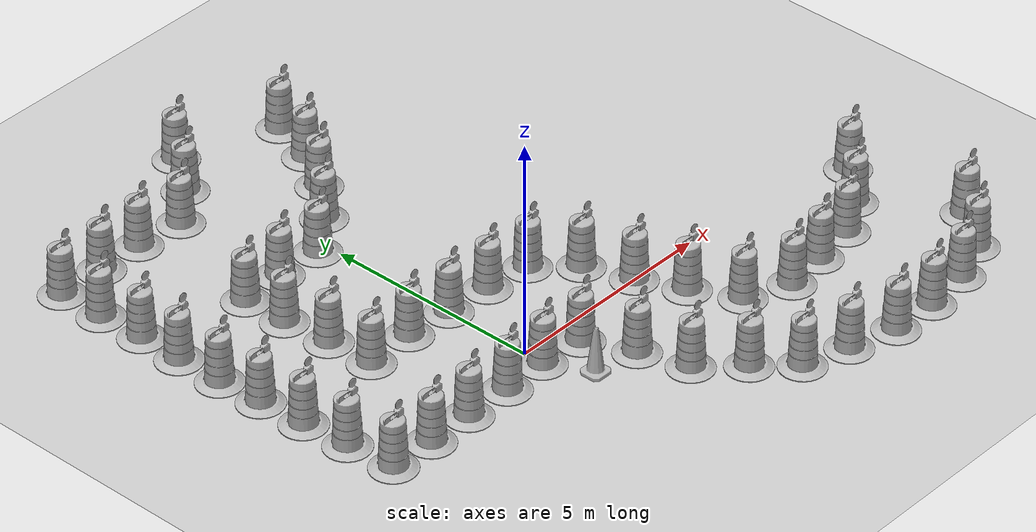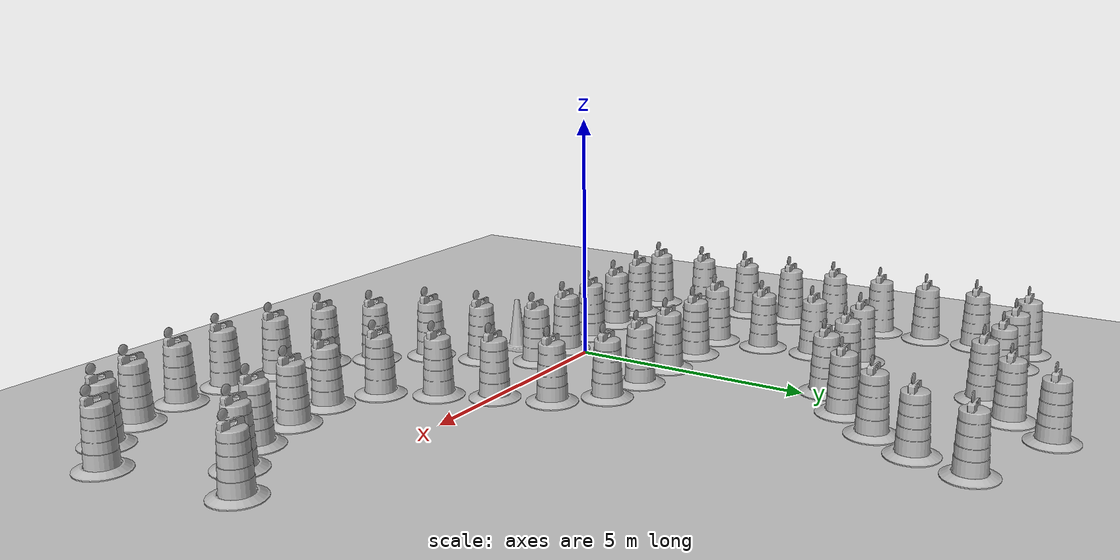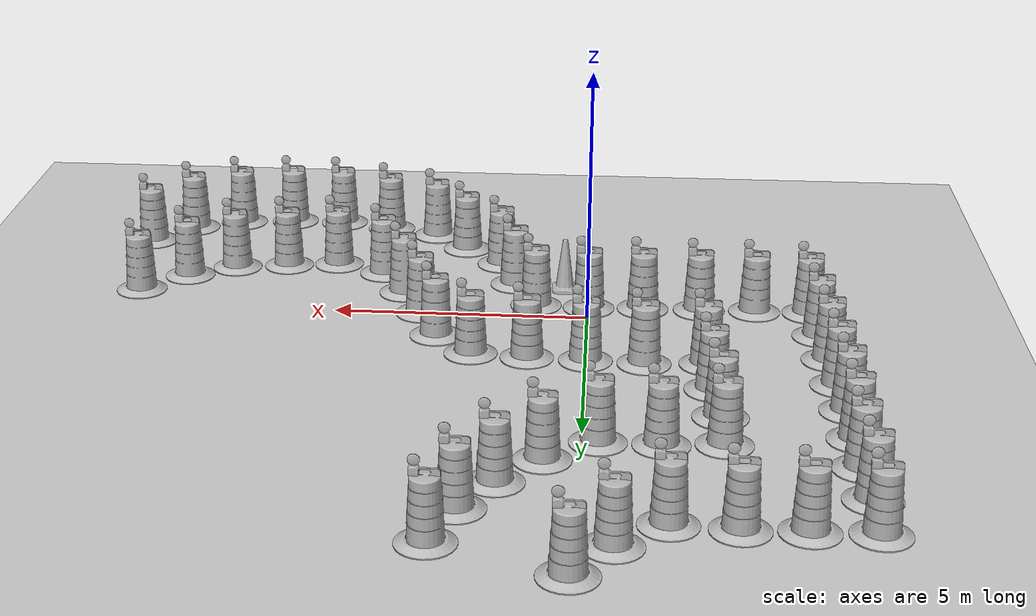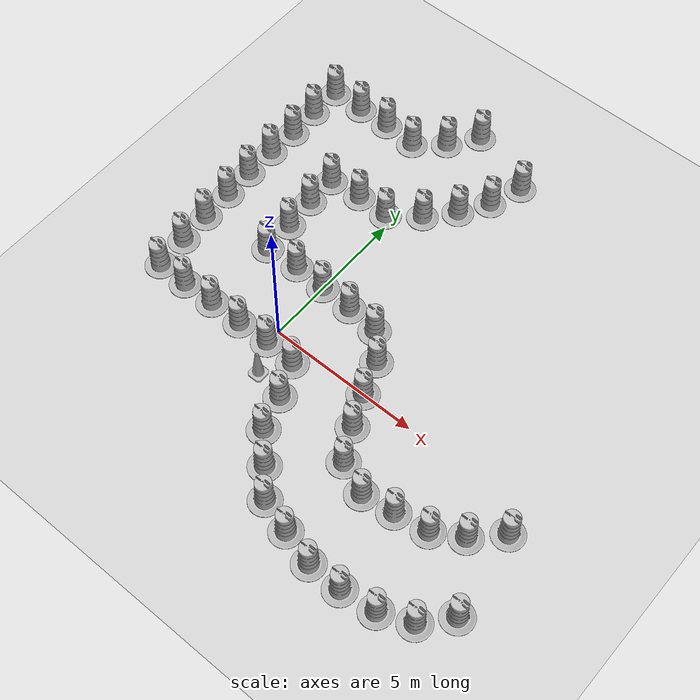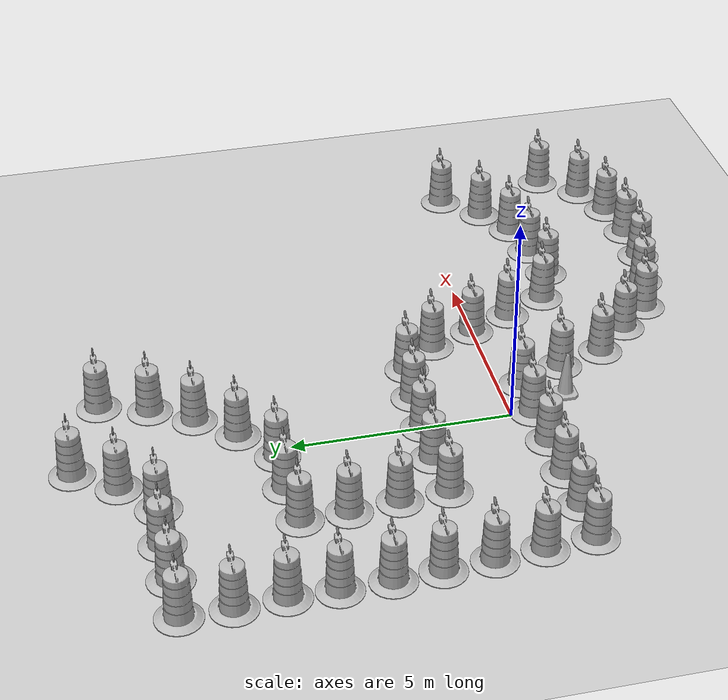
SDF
<sdf version="1.7">
 <world name="default">
  <light name="sun" type="directional">
   <pose>0 0 10 0 -0 0</pose>
   <diffuse>0.8 0.8 0.8 1</diffuse>
   <specular>0.2 0.2 0.2 1</specular>
   <attenuation>
    <range>1000</range>
    <constant>0.9</constant>
    <linear>0.01</linear>
    <quadratic>0.001</quadratic>
   </attenuation>
   <direction>-0.5 0.1 -0.9</direction>
   <spot><inner_angle>0</inner_angle><outer_angle>0</outer_angle><falloff>0</falloff></spot>
  </light>
  <model name="ground_plane">
   <static>1</static>
   <link name="link">
    <collision name="collision">
     <geometry><plane><normal>0 0 1</normal><size>100 100</size></plane></geometry>
     <surface>
      <contact><collide_bitmask>65535</collide_bitmask></contact>
      <friction><ode><mu>100</mu><mu2>50</mu2></ode></friction>
     </surface>
    </collision>
    <visual name="visual">
     <cast_shadows>0</cast_shadows>
     <geometry><plane><normal>0 0 1</normal><size>100 100</size></plane></geometry>
     <material>
      <script><uri>file://media/materials/scripts/gazebo.material</uri><name>Gazebo/Grey</name></script>
     </material>
    </visual>
   </link>
  </model>
  <gravity>0 0 -9.8</gravity>
  <magnetic_field>6e-06 2.3e-05 -4.2e-05</magnetic_field>
  <atmosphere type="adiabatic"/>
  <physics type="ode">
   <max_step_size>0.001</max_step_size>
   <real_time_factor>1</real_time_factor>
   <real_time_update_rate>1000</real_time_update_rate>
  </physics>
  <scene><ambient>0.4 0.4 0.4 1</ambient><background>0.7 0.7 0.7 1</background><shadows>1</shadows></scene>
  <audio><device>default</device></audio>
  <spherical_coordinates>
   <surface_model>EARTH_WGS84</surface_model>
   <latitude_deg>0</latitude_deg>
   <longitude_deg>0</longitude_deg>
   <elevation>0</elevation>
   <heading_deg>0</heading_deg>
  </spherical_coordinates>
  <model name="Construction Barrel">
   <link name="link">
    <inertial>
     <pose>0 0 0.4 0 -0 0</pose>
     <mass>500</mass>
     <inertia><ixx>51.2096</ixx><iyy>51.2096</iyy><izz>25</izz><ixy>0</ixy><ixz>0</ixz><iyz>0</iyz></inertia>
    </inertial>
    <collision name="collision">
     <geometry><mesh><uri>model://construction_barrel/meshes/construction_barrel.dae</uri></mesh></geometry>
    </collision>
    <visual name="visual">
     <geometry><mesh><uri>model://construction_barrel/meshes/construction_barrel.dae</uri></mesh></geometry>
    </visual>
   </link>
   <pose>1.10001 1.9769 -3e-06 -6e-06 -5e-06 -5.8e-05</pose>
  </model>
  <model name="Construction Barrel_0">
   <link name="link">
    <inertial>
     <pose>0 0 0.4 0 -0 0</pose>
     <mass>500</mass>
     <inertia><ixx>51.2096</ixx><iyy>51.2096</iyy><izz>25</izz><ixy>0</ixy><ixz>0</ixz><iyz>0</iyz></inertia>
    </inertial>
    <collision name="collision">
     <geometry><mesh><uri>model://construction_barrel/meshes/construction_barrel.dae</uri></mesh></geometry>
    </collision>
    <visual name="visual">
     <geometry><mesh><uri>model://construction_barrel/meshes/construction_barrel.dae</uri></mesh></geometry>
    </visual>
   </link>
   <pose>2.16804 1.86412 -3e-06 -6e-06 -5e-06 -5.7e-05</pose>
  </model>
  <model name="Construction Barrel_1">
   <link name="link">
    <inertial>
     <pose>0 0 0.4 0 -0 0</pose>
     <mass>500</mass>
     <inertia><ixx>51.2096</ixx><iyy>51.2096</iyy><izz>25</izz><ixy>0</ixy><ixz>0</ixz><iyz>0</iyz></inertia>
    </inertial>
    <collision name="collision">
     <geometry><mesh><uri>model://construction_barrel/meshes/construction_barrel.dae</uri></mesh></geometry>
    </collision>
    <visual name="visual">
     <geometry><mesh><uri>model://construction_barrel/meshes/construction_barrel.dae</uri></mesh></geometry>
    </visual>
   </link>
   <pose>2.89752 1.07385 -3e-06 -6e-06 -5e-06 -5.6e-05</pose>
  </model>
  <model name="Construction Barrel_2">
   <link name="link">
    <inertial>
     <pose>0 0 0.4 0 -0 0</pose>
     <mass>500</mass>
     <inertia><ixx>51.2096</ixx><iyy>51.2096</iyy><izz>25</izz><ixy>0</ixy><ixz>0</ixz><iyz>0</iyz></inertia>
    </inertial>
    <collision name="collision">
     <geometry><mesh><uri>model://construction_barrel/meshes/construction_barrel.dae</uri></mesh></geometry>
    </collision>
    <visual name="visual">
     <geometry><mesh><uri>model://construction_barrel/meshes/construction_barrel.dae</uri></mesh></geometry>
    </visual>
   </link>
   <pose>3.28249 -0.000122 -4e-06 -5e-06 -7e-06 -2.6e-05</pose>
  </model>
  <model name="Construction Barrel_3">
   <link name="link">
    <inertial>
     <pose>0 0 0.4 0 -0 0</pose>
     <mass>500</mass>
     <inertia><ixx>51.2096</ixx><iyy>51.2096</iyy><izz>25</izz><ixy>0</ixy><ixz>0</ixz><iyz>0</iyz></inertia>
    </inertial>
    <collision name="collision">
     <geometry><mesh><uri>model://construction_barrel/meshes/construction_barrel.dae</uri></mesh></geometry>
    </collision>
    <visual name="visual">
     <geometry><mesh><uri>model://construction_barrel/meshes/construction_barrel.dae</uri></mesh></geometry>
    </visual>
   </link>
   <pose>3.72829 -1.01328 -1e-06 3e-06 -0 -3.9e-05</pose>
  </model>
  <model name="Construction Barrel_4">
   <link name="link">
    <inertial>
     <pose>0 0 0.4 0 -0 0</pose>
     <mass>500</mass>
     <inertia><ixx>51.2096</ixx><iyy>51.2096</iyy><izz>25</izz><ixy>0</ixy><ixz>0</ixz><iyz>0</iyz></inertia>
    </inertial>
    <collision name="collision">
     <geometry><mesh><uri>model://construction_barrel/meshes/construction_barrel.dae</uri></mesh></geometry>
    </collision>
    <visual name="visual">
     <geometry><mesh><uri>model://construction_barrel/meshes/construction_barrel.dae</uri></mesh></geometry>
    </visual>
   </link>
   <pose>4.25516 -2.02644 1e-06 3e-06 2e-06 -4.8e-05</pose>
  </model>
  <model name="Construction Barrel_5">
   <link name="link">
    <inertial>
     <pose>0 0 0.4 0 -0 0</pose>
     <mass>500</mass>
     <inertia><ixx>51.2096</ixx><iyy>51.2096</iyy><izz>25</izz><ixy>0</ixy><ixz>0</ixz><iyz>0</iyz></inertia>
    </inertial>
    <collision name="collision">
     <geometry><mesh><uri>model://construction_barrel/meshes/construction_barrel.dae</uri></mesh></geometry>
    </collision>
    <visual name="visual">
     <geometry><mesh><uri>model://construction_barrel/meshes/construction_barrel.dae</uri></mesh></geometry>
    </visual>
   </link>
   <pose>-0.000135 2.02625 -1e-06 -8e-06 -2e-06 -6e-05</pose>
  </model>
  <model name="Construction Barrel_6">
   <link name="link">
    <inertial>
     <pose>0 0 0.4 0 -0 0</pose>
     <mass>500</mass>
     <inertia><ixx>51.2096</ixx><iyy>51.2096</iyy><izz>25</izz><ixy>0</ixy><ixz>0</ixz><iyz>0</iyz></inertia>
    </inertial>
    <collision name="collision">
     <geometry><mesh><uri>model://construction_barrel/meshes/construction_barrel.dae</uri></mesh></geometry>
    </collision>
    <visual name="visual">
     <geometry><mesh><uri>model://construction_barrel/meshes/construction_barrel.dae</uri></mesh></geometry>
    </visual>
   </link>
   <pose>-1.09443 2.08702 -4e-06 -5e-06 -7e-06 -2.7e-05</pose>
  </model>
  <model name="Construction Barrel_7">
   <link name="link">
    <inertial>
     <pose>0 0 0.4 0 -0 0</pose>
     <mass>500</mass>
     <inertia><ixx>51.2096</ixx><iyy>51.2096</iyy><izz>25</izz><ixy>0</ixy><ixz>0</ixz><iyz>0</iyz></inertia>
    </inertial>
    <collision name="collision">
     <geometry><mesh><uri>model://construction_barrel/meshes/construction_barrel.dae</uri></mesh></geometry>
    </collision>
    <visual name="visual">
     <geometry><mesh><uri>model://construction_barrel/meshes/construction_barrel.dae</uri></mesh></geometry>
    </visual>
   </link>
   <pose>-2.2494 2.02624 1e-06 3e-06 2e-06 -4.7e-05</pose>
  </model>
  <model name="Construction Barrel_8">
   <link name="link">
    <inertial>
     <pose>0 0 0.4 0 -0 0</pose>
     <mass>500</mass>
     <inertia><ixx>51.2096</ixx><iyy>51.2096</iyy><izz>25</izz><ixy>0</ixy><ixz>0</ixz><iyz>0</iyz></inertia>
    </inertial>
    <collision name="collision">
     <geometry><mesh><uri>model://construction_barrel/meshes/construction_barrel.dae</uri></mesh></geometry>
    </collision>
    <visual name="visual">
     <geometry><mesh><uri>model://construction_barrel/meshes/construction_barrel.dae</uri></mesh></geometry>
    </visual>
   </link>
   <pose>-2.3102 3.12045 1e-06 3e-06 2e-06 -2.6e-05</pose>
  </model>
  <model name="Construction Barrel_9">
   <link name="link">
    <inertial>
     <pose>0 0 0.4 0 -0 0</pose>
     <mass>500</mass>
     <inertia><ixx>51.2096</ixx><iyy>51.2096</iyy><izz>25</izz><ixy>0</ixy><ixz>0</ixz><iyz>0</iyz></inertia>
    </inertial>
    <collision name="collision">
     <geometry><mesh><uri>model://construction_barrel/meshes/construction_barrel.dae</uri></mesh></geometry>
    </collision>
    <visual name="visual">
     <geometry><mesh><uri>model://construction_barrel/meshes/construction_barrel.dae</uri></mesh></geometry>
    </visual>
   </link>
   <pose>-2.41151 4.23495 -1e-06 4e-06 -2e-06 -4.3e-05</pose>
  </model>
  <model name="Construction Barrel_4_clone">
   <link name="link">
    <inertial>
     <pose>0 0 0.4 0 -0 0</pose>
     <mass>500</mass>
     <inertia><ixx>51.2096</ixx><iyy>51.2096</iyy><izz>25</izz><ixy>0</ixy><ixz>0</ixz><iyz>0</iyz></inertia>
    </inertial>
    <collision name="collision">
     <geometry><mesh><uri>model://construction_barrel/meshes/construction_barrel.dae</uri></mesh></geometry>
    </collision>
    <visual name="visual">
     <geometry><mesh><uri>model://construction_barrel/meshes/construction_barrel.dae</uri></mesh></geometry>
    </visual>
   </link>
   <pose>-1.09436 -0.526948 -1e-06 3e-06 -0 -4e-05</pose>
  </model>
  <model name="Construction Barrel_4_clone_0">
   <link name="link">
    <inertial>
     <pose>0 0 0.4 0 -0 0</pose>
     <mass>500</mass>
     <inertia><ixx>51.2096</ixx><iyy>51.2096</iyy><izz>25</izz><ixy>0</ixy><ixz>0</ixz><iyz>0</iyz></inertia>
    </inertial>
    <collision name="collision">
     <geometry><mesh><uri>model://construction_barrel/meshes/construction_barrel.dae</uri></mesh></geometry>
    </collision>
    <visual name="visual">
     <geometry><mesh><uri>model://construction_barrel/meshes/construction_barrel.dae</uri></mesh></geometry>
    </visual>
   </link>
   <pose>-0.020383 -0.486409 -3e-06 -6e-06 -5e-06 -5.5e-05</pose>
  </model>
  <model name="Construction Barrel_4_clone_1">
   <link name="link">
    <inertial>
     <pose>0 0 0.4 0 -0 0</pose>
     <mass>500</mass>
     <inertia><ixx>51.2096</ixx><iyy>51.2096</iyy><izz>25</izz><ixy>0</ixy><ixz>0</ixz><iyz>0</iyz></inertia>
    </inertial>
    <collision name="collision">
     <geometry><mesh><uri>model://construction_barrel/meshes/construction_barrel.dae</uri></mesh></geometry>
    </collision>
    <visual name="visual">
     <geometry><mesh><uri>model://construction_barrel/meshes/construction_barrel.dae</uri></mesh></geometry>
    </visual>
   </link>
   <pose>1.03338 -0.547186 -1e-06 -8e-06 -2e-06 -6e-05</pose>
  </model>
  <model name="Construction Barrel_4_clone_2">
   <link name="link">
    <inertial>
     <pose>0 0 0.4 0 -0 0</pose>
     <mass>500</mass>
     <inertia><ixx>51.2096</ixx><iyy>51.2096</iyy><izz>25</izz><ixy>0</ixy><ixz>0</ixz><iyz>0</iyz></inertia>
    </inertial>
    <collision name="collision">
     <geometry><mesh><uri>model://construction_barrel/meshes/construction_barrel.dae</uri></mesh></geometry>
    </collision>
    <visual name="visual">
     <geometry><mesh><uri>model://construction_barrel/meshes/construction_barrel.dae</uri></mesh></geometry>
    </visual>
   </link>
   <pose>1.49935 -1.62117 -1e-06 3e-06 -0 -3.5e-05</pose>
  </model>
  <model name="Construction Barrel_4_clone_3">
   <link name="link">
    <inertial>
     <pose>0 0 0.4 0 -0 0</pose>
     <mass>500</mass>
     <inertia><ixx>51.2096</ixx><iyy>51.2096</iyy><izz>25</izz><ixy>0</ixy><ixz>0</ixz><iyz>0</iyz></inertia>
    </inertial>
    <collision name="collision">
     <geometry><mesh><uri>model://construction_barrel/meshes/construction_barrel.dae</uri></mesh></geometry>
    </collision>
    <visual name="visual">
     <geometry><mesh><uri>model://construction_barrel/meshes/construction_barrel.dae</uri></mesh></geometry>
    </visual>
   </link>
   <pose>1.84387 -2.71537 1e-06 3e-06 2e-06 -4.7e-05</pose>
  </model>
  <model name="Construction Barrel_4_clone_4">
   <link name="link">
    <inertial>
     <pose>0 0 0.4 0 -0 0</pose>
     <mass>500</mass>
     <inertia><ixx>51.2096</ixx><iyy>51.2096</iyy><izz>25</izz><ixy>0</ixy><ixz>0</ixz><iyz>0</iyz></inertia>
    </inertial>
    <collision name="collision">
     <geometry><mesh><uri>model://construction_barrel/meshes/construction_barrel.dae</uri></mesh></geometry>
    </collision>
    <visual name="visual">
     <geometry><mesh><uri>model://construction_barrel/meshes/construction_barrel.dae</uri></mesh></geometry>
    </visual>
   </link>
   <pose>2.63413 -3.54618 0 0 0 -4.3e-05</pose>
  </model>
  <model name="Construction Barrel_4_clone_5">
   <link name="link">
    <inertial>
     <pose>0 0 0.4 0 -0 0</pose>
     <mass>500</mass>
     <inertia><ixx>51.2096</ixx><iyy>51.2096</iyy><izz>25</izz><ixy>0</ixy><ixz>0</ixz><iyz>0</iyz></inertia>
    </inertial>
    <collision name="collision">
     <geometry><mesh><uri>model://construction_barrel/meshes/construction_barrel.dae</uri></mesh></geometry>
    </collision>
    <visual name="visual">
     <geometry><mesh><uri>model://construction_barrel/meshes/construction_barrel.dae</uri></mesh></geometry>
    </visual>
   </link>
   <pose>-2.20883 -0.526938 1e-06 3e-06 2e-06 -2.6e-05</pose>
  </model>
  <model name="Construction Barrel_4_clone_6">
   <link name="link">
    <inertial>
     <pose>0 0 0.4 0 -0 0</pose>
     <mass>500</mass>
     <inertia><ixx>51.2096</ixx><iyy>51.2096</iyy><izz>25</izz><ixy>0</ixy><ixz>0</ixz><iyz>0</iyz></inertia>
    </inertial>
    <collision name="collision">
     <geometry><mesh><uri>model://construction_barrel/meshes/construction_barrel.dae</uri></mesh></geometry>
    </collision>
    <visual name="visual">
     <geometry><mesh><uri>model://construction_barrel/meshes/construction_barrel.dae</uri></mesh></geometry>
    </visual>
   </link>
   <pose>-3.30301 -0.547184 -3e-06 -6e-06 -5e-06 -5.8e-05</pose>
  </model>
  <model name="Construction Barrel_4_clone_7">
   <link name="link">
    <inertial>
     <pose>0 0 0.4 0 -0 0</pose>
     <mass>500</mass>
     <inertia><ixx>51.2096</ixx><iyy>51.2096</iyy><izz>25</izz><ixy>0</ixy><ixz>0</ixz><iyz>0</iyz></inertia>
    </inertial>
    <collision name="collision">
     <geometry><mesh><uri>model://construction_barrel/meshes/construction_barrel.dae</uri></mesh></geometry>
    </collision>
    <visual name="visual">
     <geometry><mesh><uri>model://construction_barrel/meshes/construction_barrel.dae</uri></mesh></geometry>
    </visual>
   </link>
   <pose>-4.35671 -0.526923 1e-06 3e-06 2e-06 -4.8e-05</pose>
  </model>
  <model name="Construction Barrel_4_clone_8">
   <link name="link">
    <inertial>
     <pose>0 0 0.4 0 -0 0</pose>
     <mass>500</mass>
     <inertia><ixx>51.2096</ixx><iyy>51.2096</iyy><izz>25</izz><ixy>0</ixy><ixz>0</ixz><iyz>0</iyz></inertia>
    </inertial>
    <collision name="collision">
     <geometry><mesh><uri>model://construction_barrel/meshes/construction_barrel.dae</uri></mesh></geometry>
    </collision>
    <visual name="visual">
     <geometry><mesh><uri>model://construction_barrel/meshes/construction_barrel.dae</uri></mesh></geometry>
    </visual>
   </link>
   <pose>-4.45804 0.587559 -1e-06 3e-06 -0 -4.1e-05</pose>
  </model>
  <model name="Construction Barrel_4_clone_9">
   <link name="link">
    <inertial>
     <pose>0 0 0.4 0 -0 0</pose>
     <mass>500</mass>
     <inertia><ixx>51.2096</ixx><iyy>51.2096</iyy><izz>25</izz><ixy>0</ixy><ixz>0</ixz><iyz>0</iyz></inertia>
    </inertial>
    <collision name="collision">
     <geometry><mesh><uri>model://construction_barrel/meshes/construction_barrel.dae</uri></mesh></geometry>
    </collision>
    <visual name="visual">
     <geometry><mesh><uri>model://construction_barrel/meshes/construction_barrel.dae</uri></mesh></geometry>
    </visual>
   </link>
   <pose>-4.53906 1.68179 -0 0 0 -5.1e-05</pose>
  </model>
  <model name="Construction Barrel_4_clone_10">
   <link name="link">
    <inertial>
     <pose>0 0 0.4 0 -0 0</pose>
     <mass>500</mass>
     <inertia><ixx>51.2096</ixx><iyy>51.2096</iyy><izz>25</izz><ixy>0</ixy><ixz>0</ixz><iyz>0</iyz></inertia>
    </inertial>
    <collision name="collision">
     <geometry><mesh><uri>model://construction_barrel/meshes/construction_barrel.dae</uri></mesh></geometry>
    </collision>
    <visual name="visual">
     <geometry><mesh><uri>model://construction_barrel/meshes/construction_barrel.dae</uri></mesh></geometry>
    </visual>
   </link>
   <pose>-4.59985 2.77601 0 0 0 -4.2e-05</pose>
  </model>
  <model name="Construction Barrel_4_clone_11">
   <link name="link">
    <inertial>
     <pose>0 0 0.4 0 -0 0</pose>
     <mass>500</mass>
     <inertia><ixx>51.2096</ixx><iyy>51.2096</iyy><izz>25</izz><ixy>0</ixy><ixz>0</ixz><iyz>0</iyz></inertia>
    </inertial>
    <collision name="collision">
     <geometry><mesh><uri>model://construction_barrel/meshes/construction_barrel.dae</uri></mesh></geometry>
    </collision>
    <visual name="visual">
     <geometry><mesh><uri>model://construction_barrel/meshes/construction_barrel.dae</uri></mesh></geometry>
    </visual>
   </link>
   <pose>-4.66062 3.82972 -3e-06 -6e-06 -5e-06 -5.3e-05</pose>
  </model>
  <model name="Construction Barrel_4_clone_12">
   <link name="link">
    <inertial>
     <pose>0 0 0.4 0 -0 0</pose>
     <mass>500</mass>
     <inertia><ixx>51.2096</ixx><iyy>51.2096</iyy><izz>25</izz><ixy>0</ixy><ixz>0</ixz><iyz>0</iyz></inertia>
    </inertial>
    <collision name="collision">
     <geometry><mesh><uri>model://construction_barrel/meshes/construction_barrel.dae</uri></mesh></geometry>
    </collision>
    <visual name="visual">
     <geometry><mesh><uri>model://construction_barrel/meshes/construction_barrel.dae</uri></mesh></geometry>
    </visual>
   </link>
   <pose>-4.68092 4.92393 -1e-06 3e-06 -0 -3.9e-05</pose>
  </model>
  <model name="Construction Barrel_4_clone_13">
   <link name="link">
    <inertial>
     <pose>0 0 0.4 0 -0 0</pose>
     <mass>500</mass>
     <inertia><ixx>51.2096</ixx><iyy>51.2096</iyy><izz>25</izz><ixy>0</ixy><ixz>0</ixz><iyz>0</iyz></inertia>
    </inertial>
    <collision name="collision">
     <geometry><mesh><uri>model://construction_barrel/meshes/construction_barrel.dae</uri></mesh></geometry>
    </collision>
    <visual name="visual">
     <geometry><mesh><uri>model://construction_barrel/meshes/construction_barrel.dae</uri></mesh></geometry>
    </visual>
   </link>
   <pose>-2.43148 5.28868 1e-06 3e-06 2e-06 -5.4e-05</pose>
  </model>
  <model name="Construction Barrel_4_clone_14">
   <link name="link">
    <inertial>
     <pose>0 0 0.4 0 -0 0</pose>
     <mass>500</mass>
     <inertia><ixx>51.2096</ixx><iyy>51.2096</iyy><izz>25</izz><ixy>0</ixy><ixz>0</ixz><iyz>0</iyz></inertia>
    </inertial>
    <collision name="collision">
     <geometry><mesh><uri>model://construction_barrel/meshes/construction_barrel.dae</uri></mesh></geometry>
    </collision>
    <visual name="visual">
     <geometry><mesh><uri>model://construction_barrel/meshes/construction_barrel.dae</uri></mesh></geometry>
    </visual>
   </link>
   <pose>-4.66049 5.97763 -1e-06 3e-06 0 -3.7e-05</pose>
  </model>
  <model name="Construction Barrel_4_clone_15">
   <link name="link">
    <inertial>
     <pose>0 0 0.4 0 -0 0</pose>
     <mass>500</mass>
     <inertia><ixx>51.2096</ixx><iyy>51.2096</iyy><izz>25</izz><ixy>0</ixy><ixz>0</ixz><iyz>0</iyz></inertia>
    </inertial>
    <collision name="collision">
     <geometry><mesh><uri>model://construction_barrel/meshes/construction_barrel.dae</uri></mesh></geometry>
    </collision>
    <visual name="visual">
     <geometry><mesh><uri>model://construction_barrel/meshes/construction_barrel.dae</uri></mesh></geometry>
    </visual>
   </link>
   <pose>5.26561 -2.45496 -2e-06 -7e-06 -4e-06 -2.5e-05</pose>
  </model>
  <model name="Construction Barrel_4_clone_16">
   <link name="link">
    <inertial>
     <pose>0 0 0.4 0 -0 0</pose>
     <mass>500</mass>
     <inertia><ixx>51.2096</ixx><iyy>51.2096</iyy><izz>25</izz><ixy>0</ixy><ixz>0</ixz><iyz>0</iyz></inertia>
    </inertial>
    <collision name="collision">
     <geometry><mesh><uri>model://construction_barrel/meshes/construction_barrel.dae</uri></mesh></geometry>
    </collision>
    <visual name="visual">
     <geometry><mesh><uri>model://construction_barrel/meshes/construction_barrel.dae</uri></mesh></geometry>
    </visual>
   </link>
   <pose>3.34354 -4.31617 0 0 0 -2.7e-05</pose>
  </model>
  <model name="Construction Barrel_4_clone_17">
   <link name="link">
    <inertial>
     <pose>0 0 0.4 0 -0 0</pose>
     <mass>500</mass>
     <inertia><ixx>51.2096</ixx><iyy>51.2096</iyy><izz>25</izz><ixy>0</ixy><ixz>0</ixz><iyz>0</iyz></inertia>
    </inertial>
    <collision name="collision">
     <geometry><mesh><uri>model://construction_barrel/meshes/construction_barrel.dae</uri></mesh></geometry>
    </collision>
    <visual name="visual">
     <geometry><mesh><uri>model://construction_barrel/meshes/construction_barrel.dae</uri></mesh></geometry>
    </visual>
   </link>
   <pose>4.39728 -4.64037 -1e-06 -8e-06 -2e-06 -5.8e-05</pose>
  </model>
  <model name="Construction Barrel_4_clone_18">
   <link name="link">
    <inertial>
     <pose>0 0 0.4 0 -0 0</pose>
     <mass>500</mass>
     <inertia><ixx>51.2096</ixx><iyy>51.2096</iyy><izz>25</izz><ixy>0</ixy><ixz>0</ixz><iyz>0</iyz></inertia>
    </inertial>
    <collision name="collision">
     <geometry><mesh><uri>model://construction_barrel/meshes/construction_barrel.dae</uri></mesh></geometry>
    </collision>
    <visual name="visual">
     <geometry><mesh><uri>model://construction_barrel/meshes/construction_barrel.dae</uri></mesh></geometry>
    </visual>
   </link>
   <pose>5.49147 -4.94432 0 0 0 -3.3e-05</pose>
  </model>
  <model name="Construction Barrel_4_clone_19">
   <link name="link">
    <inertial>
     <pose>0 0 0.4 0 -0 0</pose>
     <mass>500</mass>
     <inertia><ixx>51.2096</ixx><iyy>51.2096</iyy><izz>25</izz><ixy>0</ixy><ixz>0</ixz><iyz>0</iyz></inertia>
    </inertial>
    <collision name="collision">
     <geometry><mesh><uri>model://construction_barrel/meshes/construction_barrel.dae</uri></mesh></geometry>
    </collision>
    <visual name="visual">
     <geometry><mesh><uri>model://construction_barrel/meshes/construction_barrel.dae</uri></mesh></geometry>
    </visual>
   </link>
   <pose>6.30659 -2.30653 -1e-06 1e-06 -9e-06 -2.7e-05</pose>
  </model>
  <model name="Construction Barrel_4_clone_20">
   <link name="link">
    <inertial>
     <pose>0 0 0.4 0 -0 0</pose>
     <mass>500</mass>
     <inertia><ixx>51.2096</ixx><iyy>51.2096</iyy><izz>25</izz><ixy>0</ixy><ixz>0</ixz><iyz>0</iyz></inertia>
    </inertial>
    <collision name="collision">
     <geometry><mesh><uri>model://construction_barrel/meshes/construction_barrel.dae</uri></mesh></geometry>
    </collision>
    <visual name="visual">
     <geometry><mesh><uri>model://construction_barrel/meshes/construction_barrel.dae</uri></mesh></geometry>
    </visual>
   </link>
   <pose>6.60087 -4.95323 -4e-06 -5e-06 -7e-06 -2.8e-05</pose>
  </model>
  <model name="Construction Barrel_4_clone_21">
   <link name="link">
    <inertial>
     <pose>0 0 0.4 0 -0 0</pose>
     <mass>500</mass>
     <inertia><ixx>51.2096</ixx><iyy>51.2096</iyy><izz>25</izz><ixy>0</ixy><ixz>0</ixz><iyz>0</iyz></inertia>
    </inertial>
    <collision name="collision">
     <geometry><mesh><uri>model://construction_barrel/meshes/construction_barrel.dae</uri></mesh></geometry>
    </collision>
    <visual name="visual">
     <geometry><mesh><uri>model://construction_barrel/meshes/construction_barrel.dae</uri></mesh></geometry>
    </visual>
   </link>
   <pose>7.37313 -2.12584 -1e-06 -8e-06 -2e-06 -5.4e-05</pose>
  </model>
  <model name="Construction Barrel_4_clone_22">
   <link name="link">
    <inertial>
     <pose>0 0 0.4 0 -0 0</pose>
     <mass>500</mass>
     <inertia><ixx>51.2096</ixx><iyy>51.2096</iyy><izz>25</izz><ixy>0</ixy><ixz>0</ixz><iyz>0</iyz></inertia>
    </inertial>
    <collision name="collision">
     <geometry><mesh><uri>model://construction_barrel/meshes/construction_barrel.dae</uri></mesh></geometry>
    </collision>
    <visual name="visual">
     <geometry><mesh><uri>model://construction_barrel/meshes/construction_barrel.dae</uri></mesh></geometry>
    </visual>
   </link>
   <pose>7.72935 -4.80652 -1e-06 4e-06 -2e-06 -4.7e-05</pose>
  </model>
  <model name="Construction Barrel_4_clone_23">
   <link name="link">
    <inertial>
     <pose>0 0 0.4 0 -0 0</pose>
     <mass>500</mass>
     <inertia><ixx>51.2096</ixx><iyy>51.2096</iyy><izz>25</izz><ixy>0</ixy><ixz>0</ixz><iyz>0</iyz></inertia>
    </inertial>
    <collision name="collision">
     <geometry><mesh><uri>model://construction_barrel/meshes/construction_barrel.dae</uri></mesh></geometry>
    </collision>
    <visual name="visual">
     <geometry><mesh><uri>model://construction_barrel/meshes/construction_barrel.dae</uri></mesh></geometry>
    </visual>
   </link>
   <pose>8.72292 -4.39411 1e-06 3e-06 2e-06 -4.7e-05</pose>
  </model>
  <model name="Construction Barrel_4_clone_24">
   <link name="link">
    <inertial>
     <pose>0 0 0.4 0 -0 0</pose>
     <mass>500</mass>
     <inertia><ixx>51.2096</ixx><iyy>51.2096</iyy><izz>25</izz><ixy>0</ixy><ixz>0</ixz><iyz>0</iyz></inertia>
    </inertial>
    <collision name="collision">
     <geometry><mesh><uri>model://construction_barrel/meshes/construction_barrel.dae</uri></mesh></geometry>
    </collision>
    <visual name="visual">
     <geometry><mesh><uri>model://construction_barrel/meshes/construction_barrel.dae</uri></mesh></geometry>
    </visual>
   </link>
   <pose>9.47278 -3.53178 -0 0 -0 -5.2e-05</pose>
  </model>
  <model name="Construction Barrel_4_clone_25">
   <link name="link">
    <inertial>
     <pose>0 0 0.4 0 -0 0</pose>
     <mass>500</mass>
     <inertia><ixx>51.2096</ixx><iyy>51.2096</iyy><izz>25</izz><ixy>0</ixy><ixz>0</ixz><iyz>0</iyz></inertia>
    </inertial>
    <collision name="collision">
     <geometry><mesh><uri>model://construction_barrel/meshes/construction_barrel.dae</uri></mesh></geometry>
    </collision>
    <visual name="visual">
     <geometry><mesh><uri>model://construction_barrel/meshes/construction_barrel.dae</uri></mesh></geometry>
    </visual>
   </link>
   <pose>8.27297 -1.6009 1e-06 3e-06 2e-06 -4.6e-05</pose>
  </model>
  <model name="Construction Barrel_4_clone_26">
   <link name="link">
    <inertial>
     <pose>0 0 0.4 0 -0 0</pose>
     <mass>500</mass>
     <inertia><ixx>51.2096</ixx><iyy>51.2096</iyy><izz>25</izz><ixy>0</ixy><ixz>0</ixz><iyz>0</iyz></inertia>
    </inertial>
    <collision name="collision">
     <geometry><mesh><uri>model://construction_barrel/meshes/construction_barrel.dae</uri></mesh></geometry>
    </collision>
    <visual name="visual">
     <geometry><mesh><uri>model://construction_barrel/meshes/construction_barrel.dae</uri></mesh></geometry>
    </visual>
   </link>
   <pose>9.09785 -0.776108 -3e-06 -6e-06 -5e-06 -4.4e-05</pose>
  </model>
  <model name="Construction Barrel_10">
   <link name="link">
    <inertial>
     <pose>0 0 0.4 0 -0 0</pose>
     <mass>500</mass>
     <inertia><ixx>51.2096</ixx><iyy>51.2096</iyy><izz>25</izz><ixy>0</ixy><ixz>0</ixz><iyz>0</iyz></inertia>
    </inertial>
    <collision name="collision">
     <geometry><mesh><uri>model://construction_barrel/meshes/construction_barrel.dae</uri></mesh></geometry>
    </collision>
    <visual name="visual">
     <geometry><mesh><uri>model://construction_barrel/meshes/construction_barrel.dae</uri></mesh></geometry>
    </visual>
   </link>
   <pose>-1.35487 5.3738 -1e-06 -8e-06 -2e-06 -2.3e-05</pose>
  </model>
  <model name="Construction Barrel_11">
   <link name="link">
    <inertial>
     <pose>0 0 0.4 0 -0 0</pose>
     <mass>500</mass>
     <inertia><ixx>51.2096</ixx><iyy>51.2096</iyy><izz>25</izz><ixy>0</ixy><ixz>0</ixz><iyz>0</iyz></inertia>
    </inertial>
    <collision name="collision">
     <geometry><mesh><uri>model://construction_barrel/meshes/construction_barrel.dae</uri></mesh></geometry>
    </collision>
    <visual name="visual">
     <geometry><mesh><uri>model://construction_barrel/meshes/construction_barrel.dae</uri></mesh></geometry>
    </visual>
   </link>
   <pose>-4.71613 7.06429 -1e-06 -8e-06 -2e-06 -2.2e-05</pose>
  </model>
  <model name="Construction Barrel_12">
   <link name="link">
    <inertial>
     <pose>0 0 0.4 0 -0 0</pose>
     <mass>500</mass>
     <inertia><ixx>51.2096</ixx><iyy>51.2096</iyy><izz>25</izz><ixy>0</ixy><ixz>0</ixz><iyz>0</iyz></inertia>
    </inertial>
    <collision name="collision">
     <geometry><mesh><uri>model://construction_barrel/meshes/construction_barrel.dae</uri></mesh></geometry>
    </collision>
    <visual name="visual">
     <geometry><mesh><uri>model://construction_barrel/meshes/construction_barrel.dae</uri></mesh></geometry>
    </visual>
   </link>
   <pose>-4.71613 8.16507 -1e-06 -8e-06 -2e-06 -2.1e-05</pose>
  </model>
  <model name="Construction Barrel_13">
   <link name="link">
    <inertial>
     <pose>0 0 0.4 0 -0 0</pose>
     <mass>500</mass>
     <inertia><ixx>51.2096</ixx><iyy>51.2096</iyy><izz>25</izz><ixy>0</ixy><ixz>0</ixz><iyz>0</iyz></inertia>
    </inertial>
    <collision name="collision">
     <geometry><mesh><uri>model://construction_barrel/meshes/construction_barrel.dae</uri></mesh></geometry>
    </collision>
    <visual name="visual">
     <geometry><mesh><uri>model://construction_barrel/meshes/construction_barrel.dae</uri></mesh></geometry>
    </visual>
   </link>
   <pose>-0.273649 5.35414 -1e-06 -8e-06 -2e-06 -2e-05</pose>
  </model>
  <model name="Construction Barrel_14">
   <link name="link">
    <inertial>
     <pose>0 0 0.4 0 -0 0</pose>
     <mass>500</mass>
     <inertia><ixx>51.2096</ixx><iyy>51.2096</iyy><izz>25</izz><ixy>0</ixy><ixz>0</ixz><iyz>0</iyz></inertia>
    </inertial>
    <collision name="collision">
     <geometry><mesh><uri>model://construction_barrel/meshes/construction_barrel.dae</uri></mesh></geometry>
    </collision>
    <visual name="visual">
     <geometry><mesh><uri>model://construction_barrel/meshes/construction_barrel.dae</uri></mesh></geometry>
    </visual>
   </link>
   <pose>-3.61538 8.16507 -0 0 -8e-06 -1.8e-05</pose>
  </model>
  <model name="Construction Barrel_15">
   <link name="link">
    <inertial>
     <pose>0 0 0.4 0 -0 0</pose>
     <mass>500</mass>
     <inertia><ixx>51.2096</ixx><iyy>51.2096</iyy><izz>25</izz><ixy>0</ixy><ixz>0</ixz><iyz>0</iyz></inertia>
    </inertial>
    <collision name="collision">
     <geometry><mesh><uri>model://construction_barrel/meshes/construction_barrel.dae</uri></mesh></geometry>
    </collision>
    <visual name="visual">
     <geometry><mesh><uri>model://construction_barrel/meshes/construction_barrel.dae</uri></mesh></geometry>
    </visual>
   </link>
   <pose>-2.53422 8.18474 -0 2e-06 -1e-06 -1.8e-05</pose>
  </model>
  <model name="Construction Barrel_16">
   <link name="link">
    <inertial>
     <pose>0 0 0.4 0 -0 0</pose>
     <mass>500</mass>
     <inertia><ixx>51.2096</ixx><iyy>51.2096</iyy><izz>25</izz><ixy>0</ixy><ixz>0</ixz><iyz>0</iyz></inertia>
    </inertial>
    <collision name="collision">
     <geometry><mesh><uri>model://construction_barrel/meshes/construction_barrel.dae</uri></mesh></geometry>
    </collision>
    <visual name="visual">
     <geometry><mesh><uri>model://construction_barrel/meshes/construction_barrel.dae</uri></mesh></geometry>
    </visual>
   </link>
   <pose>-1.41378 8.10611 -1e-06 4e-06 -2e-06 -1.5e-05</pose>
  </model>
  <model name="Construction Barrel_17">
   <link name="link">
    <inertial>
     <pose>0 0 0.4 0 -0 0</pose>
     <mass>500</mass>
     <inertia><ixx>51.2096</ixx><iyy>51.2096</iyy><izz>25</izz><ixy>0</ixy><ixz>0</ixz><iyz>0</iyz></inertia>
    </inertial>
    <collision name="collision">
     <geometry><mesh><uri>model://construction_barrel/meshes/construction_barrel.dae</uri></mesh></geometry>
    </collision>
    <visual name="visual">
     <geometry><mesh><uri>model://construction_barrel/meshes/construction_barrel.dae</uri></mesh></geometry>
    </visual>
   </link>
   <pose>0.650195 6.06179 -0 0 0 -1.5e-05</pose>
  </model>
  <model name="Construction Barrel_18">
   <link name="link">
    <inertial>
     <pose>0 0 0.4 0 -0 0</pose>
     <mass>500</mass>
     <inertia><ixx>51.2096</ixx><iyy>51.2096</iyy><izz>25</izz><ixy>0</ixy><ixz>0</ixz><iyz>0</iyz></inertia>
    </inertial>
    <collision name="collision">
     <geometry><mesh><uri>model://construction_barrel/meshes/construction_barrel.dae</uri></mesh></geometry>
    </collision>
    <visual name="visual">
     <geometry><mesh><uri>model://construction_barrel/meshes/construction_barrel.dae</uri></mesh></geometry>
    </visual>
   </link>
   <pose>1.39715 6.90705 -2e-06 -7e-06 4e-06 -1.3e-05</pose>
  </model>
  <model name="Construction Barrel_19">
   <link name="link">
    <inertial>
     <pose>0 0 0.4 0 -0 0</pose>
     <mass>500</mass>
     <inertia><ixx>51.2096</ixx><iyy>51.2096</iyy><izz>25</izz><ixy>0</ixy><ixz>0</ixz><iyz>0</iyz></inertia>
    </inertial>
    <collision name="collision">
     <geometry><mesh><uri>model://construction_barrel/meshes/construction_barrel.dae</uri></mesh></geometry>
    </collision>
    <visual name="visual">
     <geometry><mesh><uri>model://construction_barrel/meshes/construction_barrel.dae</uri></mesh></geometry>
    </visual>
   </link>
   <pose>1.96724 7.83093 -2e-06 -5e-06 -4e-06 -1e-05</pose>
  </model>
  <model name="Construction Barrel_20">
   <link name="link">
    <inertial>
     <pose>0 0 0.4 0 -0 0</pose>
     <mass>500</mass>
     <inertia><ixx>51.2096</ixx><iyy>51.2096</iyy><izz>25</izz><ixy>0</ixy><ixz>0</ixz><iyz>0</iyz></inertia>
    </inertial>
    <collision name="collision">
     <geometry><mesh><uri>model://construction_barrel/meshes/construction_barrel.dae</uri></mesh></geometry>
    </collision>
    <visual name="visual">
     <geometry><mesh><uri>model://construction_barrel/meshes/construction_barrel.dae</uri></mesh></geometry>
    </visual>
   </link>
   <pose>2.34072 8.93171 -2e-06 7e-06 -2e-06 -8e-06</pose>
  </model>
  <model name="Construction Barrel_21">
   <link name="link">
    <inertial>
     <pose>0 0 0.4 0 -0 0</pose>
     <mass>500</mass>
     <inertia><ixx>51.2096</ixx><iyy>51.2096</iyy><izz>25</izz><ixy>0</ixy><ixz>0</ixz><iyz>0</iyz></inertia>
    </inertial>
    <collision name="collision">
     <geometry><mesh><uri>model://construction_barrel/meshes/construction_barrel.dae</uri></mesh></geometry>
    </collision>
    <visual name="visual">
     <geometry><mesh><uri>model://construction_barrel/meshes/construction_barrel.dae</uri></mesh></geometry>
    </visual>
   </link>
   <pose>-0.548808 8.83343 0 0 0 -7e-06</pose>
  </model>
  <model name="Construction Barrel_22">
   <link name="link">
    <inertial>
     <pose>0 0 0.4 0 -0 0</pose>
     <mass>500</mass>
     <inertia><ixx>51.2096</ixx><iyy>51.2096</iyy><izz>25</izz><ixy>0</ixy><ixz>0</ixz><iyz>0</iyz></inertia>
    </inertial>
    <collision name="collision">
     <geometry><mesh><uri>model://construction_barrel/meshes/construction_barrel.dae</uri></mesh></geometry>
    </collision>
    <visual name="visual">
     <geometry><mesh><uri>model://construction_barrel/meshes/construction_barrel.dae</uri></mesh></geometry>
    </visual>
   </link>
   <pose>0.119485 9.7573 -5e-06 -9e-06 -9e-06 -6e-06</pose>
  </model>
  <model name="Construction Cone">
   <link name="link">
    <collision name="collision">
     <geometry>
      <mesh><scale>10 10 10</scale><uri>model://construction_cone/meshes/construction_cone.dae</uri></mesh>
     </geometry>
    </collision>
    <visual name="visual">
     <geometry>
      <mesh><scale>10 10 10</scale><uri>model://construction_cone/meshes/construction_cone.dae</uri></mesh>
     </geometry>
    </visual>
    <inertial>
     <inertia><ixx>1</ixx><ixy>0</ixy><ixz>0</ixz><iyy>1</iyy><iyz>0</iyz><izz>1</izz></inertia>
     <mass>1</mass>
    </inertial>
   </link>
   <pose>0.484515 -1.42564 -0 0 -1e-06 0</pose>
  </model>
 </world>
</sdf>
